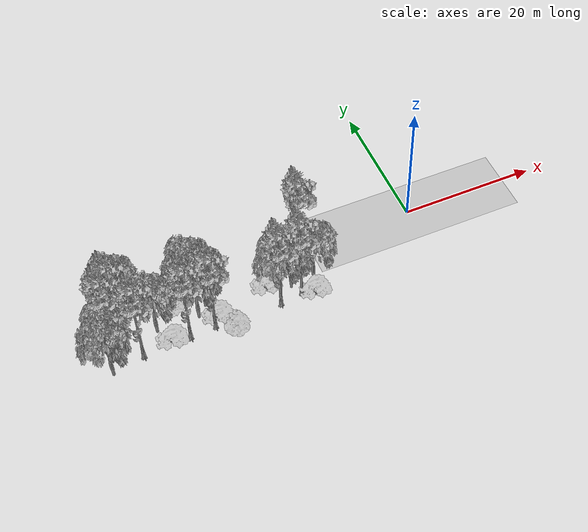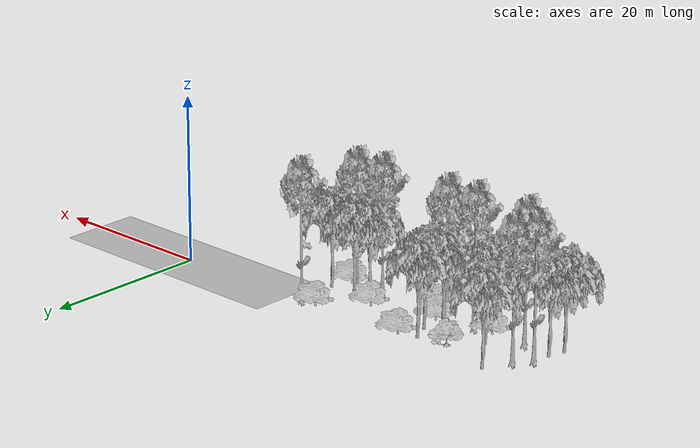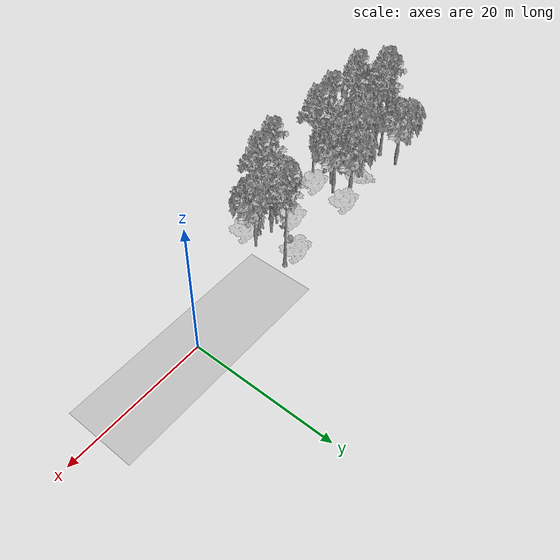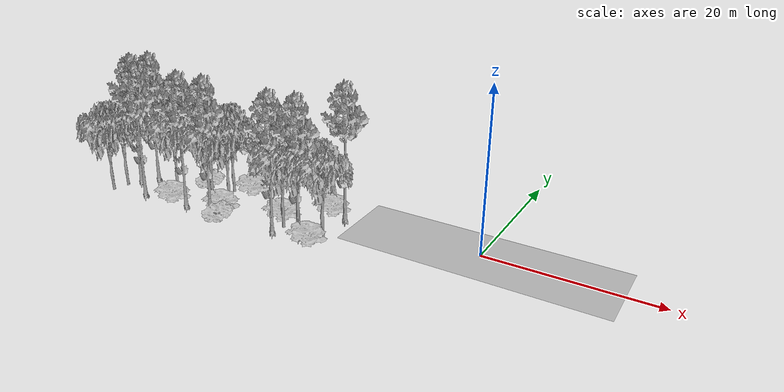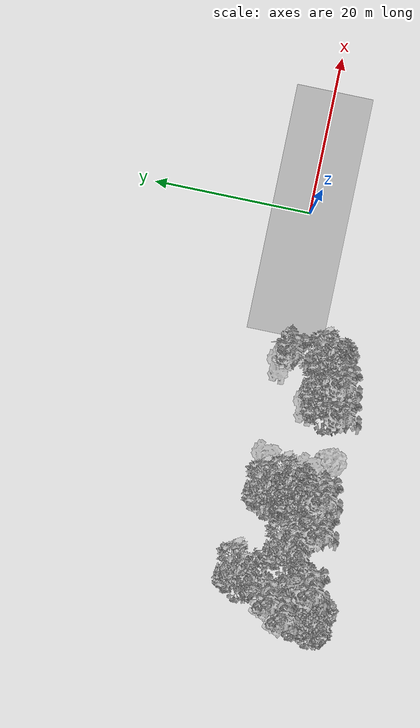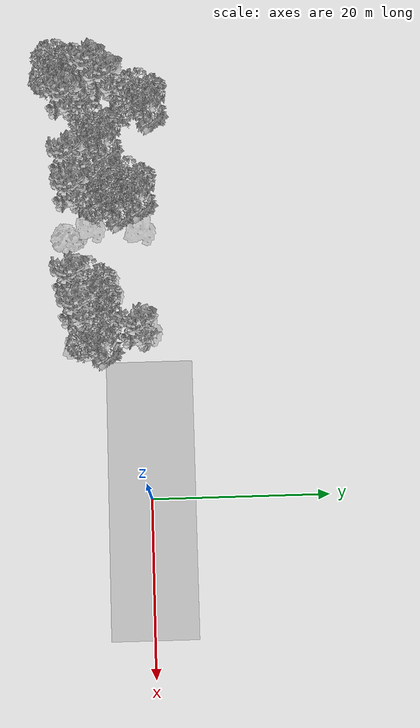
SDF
<sdf version="1.7">
 <world name="default">
  <model name="ground_plane">
   <static>1</static>
   <link name="link">
    <collision name="collision">
     <pose>-50 0 0 0 -0 0</pose>
     <geometry><plane><normal>0 0 1</normal><size>100 100</size></plane></geometry>
     <surface><contact><ode><min_depth>0.01</min_depth><max_vel>0</max_vel></ode></contact></surface>
    </collision>
    <visual name="grass">
     <cast_shadows>0</cast_shadows>
     <geometry>
      <mesh>
       <scale>0.5814285714285714 0.18142857142857144 0.1</scale>
       <uri>file://grass_plane/meshes/grass_plane.dae</uri>
      </mesh>
     </geometry>
    </visual>
   </link>
  </model>
  <model name="Tree 0">
   <static>1</static>
   <pose>-40.20979080578474 -5.091505781952723 0 1.57079 -0 0</pose>
   <link name="link">
    <collision name="collision">
     <geometry><mesh><scale>3.5 5 3.5</scale><uri>model://tree_2/meshes/tree_2.obj</uri></mesh></geometry>
    </collision>
    <visual name="visual">
     <geometry><mesh><scale>3.5 5 3.5</scale><uri>model://tree_2/meshes/tree_2.obj</uri></mesh></geometry>
    </visual>
   </link>
  </model>
  <model name="Tree 7">
   <static>1</static>
   <pose>-32.6318323390865 -7.410039385801264 0 1.57079 -0 0</pose>
   <link name="link">
    <collision name="collision">
     <geometry><mesh><scale>3.5 5 3.5</scale><uri>model://tree_9/meshes/tree_9.obj</uri></mesh></geometry>
    </collision>
    <visual name="visual">
     <geometry><mesh><scale>3.5 5 3.5</scale><uri>model://tree_9/meshes/tree_9.obj</uri></mesh></geometry>
    </visual>
   </link>
  </model>
  <model name="Tree 10">
   <static>1</static>
   <pose>-38.75446158868482 -7.860896149529964 0 1.57079 -0 0</pose>
   <link name="link">
    <collision name="collision">
     <geometry><mesh><scale>3 2 3</scale><uri>model://tree_3/meshes/tree_3.obj</uri></mesh></geometry>
    </collision>
    <visual name="visual">
     <geometry><mesh><scale>3 2 3</scale><uri>model://tree_3/meshes/tree_3.obj</uri></mesh></geometry>
    </visual>
   </link>
  </model>
  <model name="Tree 19">
   <static>1</static>
   <pose>-23.06173525690212 -7.55962782728095 0 1.57079 -0 0</pose>
   <link name="link">
    <collision name="collision">
     <geometry><mesh><scale>3.5 5 3.5</scale><uri>model://tree_9/meshes/tree_9.obj</uri></mesh></geometry>
    </collision>
    <visual name="visual">
     <geometry><mesh><scale>3.5 5 3.5</scale><uri>model://tree_9/meshes/tree_9.obj</uri></mesh></geometry>
    </visual>
   </link>
  </model>
  <model name="Tree 38">
   <static>1</static>
   <pose>-34.226214622495235 -5.119829436239913 0 1.57079 -0 0</pose>
   <link name="link">
    <collision name="collision">
     <geometry><mesh><scale>3.5 5 3.5</scale><uri>model://tree_2/meshes/tree_2.obj</uri></mesh></geometry>
    </collision>
    <visual name="visual">
     <geometry><mesh><scale>3.5 5 3.5</scale><uri>model://tree_2/meshes/tree_2.obj</uri></mesh></geometry>
    </visual>
   </link>
  </model>
  <model name="Tree 58">
   <static>1</static>
   <pose>-17.381117549240752 -5.488232455125001 0 1.57079 -0 0</pose>
   <link name="link">
    <collision name="collision">
     <geometry><mesh><scale>3.5 5 3.5</scale><uri>model://tree_2/meshes/tree_2.obj</uri></mesh></geometry>
    </collision>
    <visual name="visual">
     <geometry><mesh><scale>3.5 5 3.5</scale><uri>model://tree_2/meshes/tree_2.obj</uri></mesh></geometry>
    </visual>
   </link>
  </model>
  <model name="Tree 60">
   <static>1</static>
   <pose>-17.990721101821748 -8.075910531459616 0 1.57079 -0 0</pose>
   <link name="link">
    <collision name="collision">
     <geometry><mesh><scale>3 2 3</scale><uri>model://tree_3/meshes/tree_3.obj</uri></mesh></geometry>
    </collision>
    <visual name="visual">
     <geometry><mesh><scale>3 2 3</scale><uri>model://tree_3/meshes/tree_3.obj</uri></mesh></geometry>
    </visual>
   </link>
  </model>
  <model name="Tree 71">
   <static>1</static>
   <pose>-19.499787268871295 -0.4076644301691186 0 1.57079 -0 0</pose>
   <link name="link">
    <collision name="collision">
     <geometry><mesh><scale>3 2 3</scale><uri>model://tree_3/meshes/tree_3.obj</uri></mesh></geometry>
    </collision>
    <visual name="visual">
     <geometry><mesh><scale>3 2 3</scale><uri>model://tree_3/meshes/tree_3.obj</uri></mesh></geometry>
    </visual>
   </link>
  </model>
  <model name="Tree 74">
   <static>1</static>
   <pose>-46.49906343819895 -5.355711060091474 0 1.57079 -0 0</pose>
   <link name="link">
    <collision name="collision">
     <geometry><mesh><scale>3.5 5 3.5</scale><uri>model://tree_9/meshes/tree_9.obj</uri></mesh></geometry>
    </collision>
    <visual name="visual">
     <geometry><mesh><scale>3.5 5 3.5</scale><uri>model://tree_9/meshes/tree_9.obj</uri></mesh></geometry>
    </visual>
   </link>
  </model>
  <model name="Tree 93">
   <static>1</static>
   <pose>-36.30891533068271 -7.7435307073885085 0 1.57079 -0 0</pose>
   <link name="link">
    <collision name="collision">
     <geometry><mesh><scale>3.5 5 3.5</scale><uri>model://tree_9/meshes/tree_9.obj</uri></mesh></geometry>
    </collision>
    <visual name="visual">
     <geometry><mesh><scale>3.5 5 3.5</scale><uri>model://tree_9/meshes/tree_9.obj</uri></mesh></geometry>
    </visual>
   </link>
  </model>
  <model name="Tree 95">
   <static>1</static>
   <pose>-47.65827389629188 -9.222121189662488 0 1.57079 -0 0</pose>
   <link name="link">
    <collision name="collision">
     <geometry><mesh><scale>3.5 5 3.5</scale><uri>model://tree_2/meshes/tree_2.obj</uri></mesh></geometry>
    </collision>
    <visual name="visual">
     <geometry><mesh><scale>3.5 5 3.5</scale><uri>model://tree_2/meshes/tree_2.obj</uri></mesh></geometry>
    </visual>
   </link>
  </model>
  <model name="Tree 98">
   <static>1</static>
   <pose>-31.80372050390578 -6.6323254564204195 0 1.57079 -0 0</pose>
   <link name="link">
    <collision name="collision">
     <geometry><mesh><scale>3 2 3</scale><uri>model://tree_3/meshes/tree_3.obj</uri></mesh></geometry>
    </collision>
    <visual name="visual">
     <geometry><mesh><scale>3 2 3</scale><uri>model://tree_3/meshes/tree_3.obj</uri></mesh></geometry>
    </visual>
   </link>
  </model>
  <model name="Tree 110">
   <static>1</static>
   <pose>-32.77972650078946 -3.6844714494378756 0 1.57079 -0 0</pose>
   <link name="link">
    <collision name="collision">
     <geometry><mesh><scale>3.5 5 3.5</scale><uri>model://tree_2/meshes/tree_2.obj</uri></mesh></geometry>
    </collision>
    <visual name="visual">
     <geometry><mesh><scale>3.5 5 3.5</scale><uri>model://tree_2/meshes/tree_2.obj</uri></mesh></geometry>
    </visual>
   </link>
  </model>
  <model name="Tree 118">
   <static>1</static>
   <pose>-31.32977110726241 -0.9023332045521641 0 1.57079 -0 0</pose>
   <link name="link">
    <collision name="collision">
     <geometry><mesh><scale>3 2 3</scale><uri>model://tree_3/meshes/tree_3.obj</uri></mesh></geometry>
    </collision>
    <visual name="visual">
     <geometry><mesh><scale>3 2 3</scale><uri>model://tree_3/meshes/tree_3.obj</uri></mesh></geometry>
    </visual>
   </link>
  </model>
  <model name="Tree 141">
   <static>1</static>
   <pose>-45.0871136148619 -3.532846862571496 0 1.57079 -0 0</pose>
   <link name="link">
    <collision name="collision">
     <geometry><mesh><scale>3.5 5 3.5</scale><uri>model://tree_9/meshes/tree_9.obj</uri></mesh></geometry>
    </collision>
    <visual name="visual">
     <geometry><mesh><scale>3.5 5 3.5</scale><uri>model://tree_9/meshes/tree_9.obj</uri></mesh></geometry>
    </visual>
   </link>
  </model>
  <model name="Tree 143">
   <static>1</static>
   <pose>-44.013892485605595 -0.04089327949867538 0 1.57079 -0 0</pose>
   <link name="link">
    <collision name="collision">
     <geometry><mesh><scale>3.5 5 3.5</scale><uri>model://tree_2/meshes/tree_2.obj</uri></mesh></geometry>
    </collision>
    <visual name="visual">
     <geometry><mesh><scale>3.5 5 3.5</scale><uri>model://tree_2/meshes/tree_2.obj</uri></mesh></geometry>
    </visual>
   </link>
  </model>
  <model name="Tree 189">
   <static>1</static>
   <pose>-30.264184282022924 -8.800555551787433 0 1.57079 -0 0</pose>
   <link name="link">
    <collision name="collision">
     <geometry><mesh><scale>4 2.5 4</scale><uri>model://tree_1/meshes/tree_1.obj</uri></mesh></geometry>
    </collision>
    <visual name="visual">
     <geometry><mesh><scale>4 2.5 4</scale><uri>model://tree_1/meshes/tree_1.obj</uri></mesh></geometry>
    </visual>
   </link>
  </model>
  <model name="Tree 194">
   <static>1</static>
   <pose>-20.76686349693937 -5.526570236090118 0 1.57079 -0 0</pose>
   <link name="link">
    <collision name="collision">
     <geometry><mesh><scale>3.5 5 3.5</scale><uri>model://tree_2/meshes/tree_2.obj</uri></mesh></geometry>
    </collision>
    <visual name="visual">
     <geometry><mesh><scale>3.5 5 3.5</scale><uri>model://tree_2/meshes/tree_2.obj</uri></mesh></geometry>
    </visual>
   </link>
  </model>
  <model name="Tree 201">
   <static>1</static>
   <pose>-17.371488271010453 -0.45383911996152904 0 1.57079 -0 0</pose>
   <link name="link">
    <collision name="collision">
     <geometry><mesh><scale>3.5 5 3.5</scale><uri>model://tree_9/meshes/tree_9.obj</uri></mesh></geometry>
    </collision>
    <visual name="visual">
     <geometry><mesh><scale>3.5 5 3.5</scale><uri>model://tree_9/meshes/tree_9.obj</uri></mesh></geometry>
    </visual>
   </link>
  </model>
  <model name="Tree 202">
   <static>1</static>
   <pose>-22.585815925930426 -6.054359846674993 0 1.57079 -0 0</pose>
   <link name="link">
    <collision name="collision">
     <geometry><mesh><scale>3.5 5 3.5</scale><uri>model://tree_2/meshes/tree_2.obj</uri></mesh></geometry>
    </collision>
    <visual name="visual">
     <geometry><mesh><scale>3.5 5 3.5</scale><uri>model://tree_2/meshes/tree_2.obj</uri></mesh></geometry>
    </visual>
   </link>
  </model>
  <model name="Tree 217">
   <static>1</static>
   <pose>-47.14716194585943 -7.229334971851347 0 1.57079 -0 0</pose>
   <link name="link">
    <collision name="collision">
     <geometry><mesh><scale>3.5 5 3.5</scale><uri>model://tree_2/meshes/tree_2.obj</uri></mesh></geometry>
    </collision>
    <visual name="visual">
     <geometry><mesh><scale>3.5 5 3.5</scale><uri>model://tree_2/meshes/tree_2.obj</uri></mesh></geometry>
    </visual>
   </link>
  </model>
  <model name="Tree 227">
   <static>1</static>
   <pose>-33.809847036887184 -1.436713289296673 0 1.57079 -0 0</pose>
   <link name="link">
    <collision name="collision">
     <geometry><mesh><scale>3.5 5 3.5</scale><uri>model://tree_2/meshes/tree_2.obj</uri></mesh></geometry>
    </collision>
    <visual name="visual">
     <geometry><mesh><scale>3.5 5 3.5</scale><uri>model://tree_2/meshes/tree_2.obj</uri></mesh></geometry>
    </visual>
   </link>
  </model>
  <model name="Tree 239">
   <static>1</static>
   <pose>-37.21444649856224 -2.1050650417784453 0 1.57079 -0 0</pose>
   <link name="link">
    <collision name="collision">
     <geometry><mesh><scale>4 2.5 4</scale><uri>model://tree_1/meshes/tree_1.obj</uri></mesh></geometry>
    </collision>
    <visual name="visual">
     <geometry><mesh><scale>4 2.5 4</scale><uri>model://tree_1/meshes/tree_1.obj</uri></mesh></geometry>
    </visual>
   </link>
  </model>
  <model name="Tree 240">
   <static>1</static>
   <pose>-23.939382267639136 -4.693453344830079 0 1.57079 -0 0</pose>
   <link name="link">
    <collision name="collision">
     <geometry><mesh><scale>3 2 3</scale><uri>model://tree_3/meshes/tree_3.obj</uri></mesh></geometry>
    </collision>
    <visual name="visual">
     <geometry><mesh><scale>3 2 3</scale><uri>model://tree_3/meshes/tree_3.obj</uri></mesh></geometry>
    </visual>
   </link>
  </model>
  <model name="Tree 270">
   <static>1</static>
   <pose>-19.720258699674467 -6.951887773380985 0 1.57079 -0 0</pose>
   <link name="link">
    <collision name="collision">
     <geometry><mesh><scale>3.5 5 3.5</scale><uri>model://tree_9/meshes/tree_9.obj</uri></mesh></geometry>
    </collision>
    <visual name="visual">
     <geometry><mesh><scale>3.5 5 3.5</scale><uri>model://tree_9/meshes/tree_9.obj</uri></mesh></geometry>
    </visual>
   </link>
  </model>
  <model name="Tree 292">
   <static>1</static>
   <pose>-43.05628417331126 -8.038304732893284 0 1.57079 -0 0</pose>
   <link name="link">
    <collision name="collision">
     <geometry><mesh><scale>3.5 5 3.5</scale><uri>model://tree_9/meshes/tree_9.obj</uri></mesh></geometry>
    </collision>
    <visual name="visual">
     <geometry><mesh><scale>3.5 5 3.5</scale><uri>model://tree_9/meshes/tree_9.obj</uri></mesh></geometry>
    </visual>
   </link>
  </model>
 </world>
</sdf>
